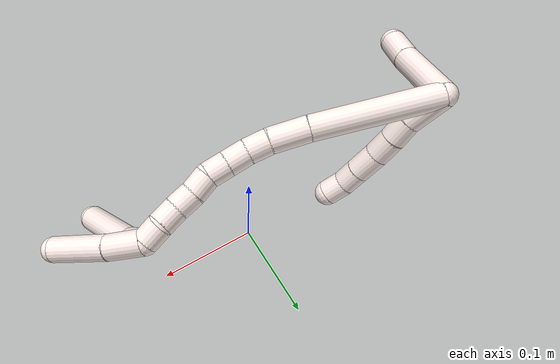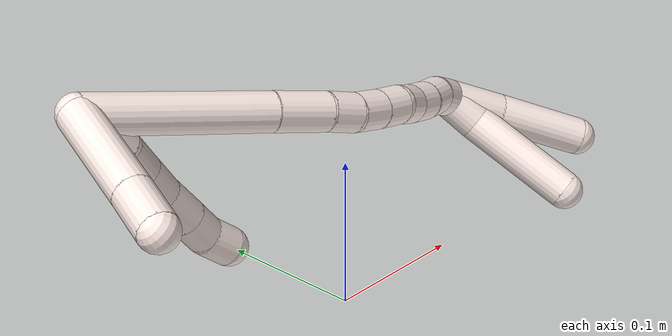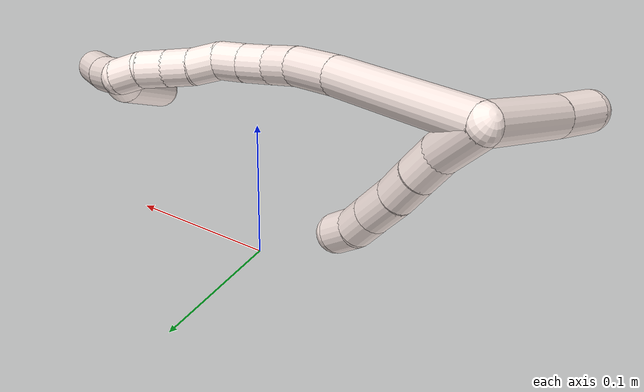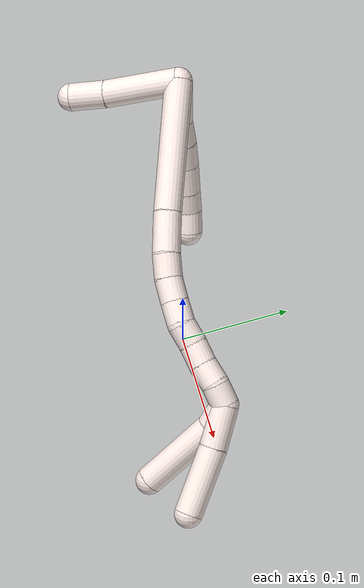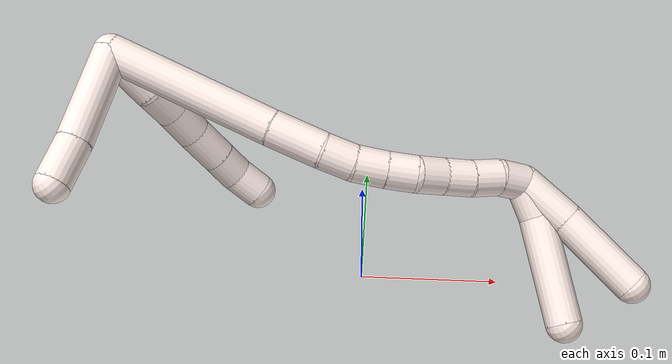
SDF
<sdf version="1.7">
 <world name="default">
  <model name="11">
   <static>0</static>
   <link name="11">
    <collision name="collision-cylinder-e_1_2_8">
     <pose>0.001443 0.000898 -0.019062 -3.09454 0.075461 -2.02675</pose>
     <geometry><cylinder><radius>0.0125</radius><length>0.038275</length></cylinder></geometry>
     <surface>
      <friction><ode><mu>1.16</mu><mu2>1.16</mu2><slip1>0</slip1><slip2>0</slip2></ode></friction>
      <contact><ode><kp>1e+06</kp><kd>1</kd><max_vel>0</max_vel><min_depth>0.001</min_depth></ode></contact>
     </surface>
    </collision>
    <visual name="visual-cylinder-e_1_2_8">
     <pose>0.001443 0.000898 -0.019062 -3.09454 0.075461 -2.02675</pose>
     <geometry><cylinder><radius>0.0125</radius><length>0.038275</length></cylinder></geometry>
     <material><ambient>1 0.933333 0.909804 1</ambient></material>
    </visual>
    <collision name="collision-cylinder-e_2_8_9">
     <pose>0.003289 0.00455 -0.048986 -2.89323 0.035988 -0.286368</pose>
     <geometry><cylinder><radius>0.0125</radius><length>0.022426</length></cylinder></geometry>
     <surface>
      <friction><ode><mu>1.16</mu><mu2>1.16</mu2><slip1>0</slip1><slip2>0</slip2></ode></friction>
      <contact><ode><kp>1e+06</kp><kd>1</kd><max_vel>0</max_vel><min_depth>0.001</min_depth></ode></contact>
     </surface>
    </collision>
    <visual name="visual-cylinder-e_2_8_9">
     <pose>0.003289 0.00455 -0.048986 -2.89323 0.035988 -0.286368</pose>
     <geometry><cylinder><radius>0.0125</radius><length>0.022426</length></cylinder></geometry>
     <material><ambient>1 0.933333 0.909804 1</ambient></material>
    </visual>
    <collision name="collision-cylinder-e_3_9_10">
     <pose>0.00371 0.009492 -0.071096 -2.94953 0.001546 -0.016053</pose>
     <geometry><cylinder><radius>0.0125</radius><length>0.022917</length></cylinder></geometry>
     <surface>
      <friction><ode><mu>1.16</mu><mu2>1.16</mu2><slip1>0</slip1><slip2>0</slip2></ode></friction>
      <contact><ode><kp>1e+06</kp><kd>1</kd><max_vel>0</max_vel><min_depth>0.001</min_depth></ode></contact>
     </surface>
    </collision>
    <visual name="visual-cylinder-e_3_9_10">
     <pose>0.00371 0.009492 -0.071096 -2.94953 0.001546 -0.016053</pose>
     <geometry><cylinder><radius>0.0125</radius><length>0.022917</length></cylinder></geometry>
     <material><ambient>1 0.933333 0.909804 1</ambient></material>
    </visual>
    <collision name="collision-cylinder-e_4_10_11">
     <pose>0.004496 0.013335 -0.095236 -3.01384 0.059026 -0.864835</pose>
     <geometry><cylinder><radius>0.0125</radius><length>0.026042</length></cylinder></geometry>
     <surface>
      <friction><ode><mu>1.16</mu><mu2>1.16</mu2><slip1>0</slip1><slip2>0</slip2></ode></friction>
      <contact><ode><kp>1e+06</kp><kd>1</kd><max_vel>0</max_vel><min_depth>0.001</min_depth></ode></contact>
     </surface>
    </collision>
    <visual name="visual-cylinder-e_4_10_11">
     <pose>0.004496 0.013335 -0.095236 -3.01384 0.059026 -0.864835</pose>
     <geometry><cylinder><radius>0.0125</radius><length>0.026042</length></cylinder></geometry>
     <material><ambient>1 0.933333 0.909804 1</ambient></material>
    </visual>
    <collision name="collision-cylinder-e_5_11_12">
     <pose>0.005745 0.016351 -0.118027 -3.005 0.048068 -0.675872</pose>
     <geometry><cylinder><radius>0.0125</radius><length>0.020006</length></cylinder></geometry>
     <surface>
      <friction><ode><mu>1.16</mu><mu2>1.16</mu2><slip1>0</slip1><slip2>0</slip2></ode></friction>
      <contact><ode><kp>1e+06</kp><kd>1</kd><max_vel>0</max_vel><min_depth>0.001</min_depth></ode></contact>
     </surface>
    </collision>
    <visual name="visual-cylinder-e_5_11_12">
     <pose>0.005745 0.016351 -0.118027 -3.005 0.048068 -0.675872</pose>
     <geometry><cylinder><radius>0.0125</radius><length>0.020006</length></cylinder></geometry>
     <material><ambient>1 0.933333 0.909804 1</ambient></material>
    </visual>
    <collision name="collision-cylinder-e_6_12_6">
     <pose>0.008526 0.017368 -0.137822 3.10681 0.228311 2.84047</pose>
     <geometry><cylinder><radius>0.0125</radius><length>0.020333</length></cylinder></geometry>
     <surface>
      <friction><ode><mu>1.16</mu><mu2>1.16</mu2><slip1>0</slip1><slip2>0</slip2></ode></friction>
      <contact><ode><kp>1e+06</kp><kd>1</kd><max_vel>0</max_vel><min_depth>0.001</min_depth></ode></contact>
     </surface>
    </collision>
    <visual name="visual-cylinder-e_6_12_6">
     <pose>0.008526 0.017368 -0.137822 3.10681 0.228311 2.84047</pose>
     <geometry><cylinder><radius>0.0125</radius><length>0.020333</length></cylinder></geometry>
     <material><ambient>1 0.933333 0.909804 1</ambient></material>
    </visual>
    <collision name="collision-cylinder-e_1_2_13">
     <pose>-0.021996 -0.023369 -0.011186 2.01722 -0.70391 -1.05555</pose>
     <geometry><cylinder><radius>0.0125</radius><length>0.067973</length></cylinder></geometry>
     <surface>
      <friction><ode><mu>1.16</mu><mu2>1.16</mu2><slip1>0</slip1><slip2>0</slip2></ode></friction>
      <contact><ode><kp>1e+06</kp><kd>1</kd><max_vel>0</max_vel><min_depth>0.001</min_depth></ode></contact>
     </surface>
    </collision>
    <visual name="visual-cylinder-e_1_2_13">
     <pose>-0.021996 -0.023369 -0.011186 2.01722 -0.70391 -1.05555</pose>
     <geometry><cylinder><radius>0.0125</radius><length>0.067973</length></cylinder></geometry>
     <material><ambient>1 0.933333 0.909804 1</ambient></material>
    </visual>
    <collision name="collision-cylinder-e_2_13_5">
     <pose>-0.054571 -0.058094 -0.026318 1.90524 -0.721645 -0.975658</pose>
     <geometry><cylinder><radius>0.0125</radius><length>0.032027</length></cylinder></geometry>
     <surface>
      <friction><ode><mu>1.16</mu><mu2>1.16</mu2><slip1>0</slip1><slip2>0</slip2></ode></friction>
      <contact><ode><kp>1e+06</kp><kd>1</kd><max_vel>0</max_vel><min_depth>0.001</min_depth></ode></contact>
     </surface>
    </collision>
    <visual name="visual-cylinder-e_2_13_5">
     <pose>-0.054571 -0.058094 -0.026318 1.90524 -0.721645 -0.975658</pose>
     <geometry><cylinder><radius>0.0125</radius><length>0.032027</length></cylinder></geometry>
     <material><ambient>1 0.933333 0.909804 1</ambient></material>
    </visual>
    <collision name="collision-cylinder-e_1_2_14">
     <pose>0.031222 -0.021561 -0.046147 2.7045 0.549897 1.8077</pose>
     <geometry><cylinder><radius>0.0125</radius><length>0.119486</length></cylinder></geometry>
     <surface>
      <friction><ode><mu>1.16</mu><mu2>1.16</mu2><slip1>0</slip1><slip2>0</slip2></ode></friction>
      <contact><ode><kp>1e+06</kp><kd>1</kd><max_vel>0</max_vel><min_depth>0.001</min_depth></ode></contact>
     </surface>
    </collision>
    <visual name="visual-cylinder-e_1_2_14">
     <pose>0.031222 -0.021561 -0.046147 2.7045 0.549897 1.8077</pose>
     <geometry><cylinder><radius>0.0125</radius><length>0.119486</length></cylinder></geometry>
     <material><ambient>1 0.933333 0.909804 1</ambient></material>
    </visual>
    <collision name="collision-cylinder-e_2_14_15">
     <pose>0.072294 -0.048716 -0.1068 2.77359 0.564766 2.00092</pose>
     <geometry><cylinder><radius>0.0125</radius><length>0.036809</length></cylinder></geometry>
     <surface>
      <friction><ode><mu>1.16</mu><mu2>1.16</mu2><slip1>0</slip1><slip2>0</slip2></ode></friction>
      <contact><ode><kp>1e+06</kp><kd>1</kd><max_vel>0</max_vel><min_depth>0.001</min_depth></ode></contact>
     </surface>
    </collision>
    <visual name="visual-cylinder-e_2_14_15">
     <pose>0.072294 -0.048716 -0.1068 2.77359 0.564766 2.00092</pose>
     <geometry><cylinder><radius>0.0125</radius><length>0.036809</length></cylinder></geometry>
     <material><ambient>1 0.933333 0.909804 1</ambient></material>
    </visual>
    <collision name="collision-cylinder-e_3_15_16">
     <pose>0.088054 -0.05614 -0.130358 2.94194 0.569231 2.48188</pose>
     <geometry><cylinder><radius>0.0125</radius><length>0.02193</length></cylinder></geometry>
     <surface>
      <friction><ode><mu>1.16</mu><mu2>1.16</mu2><slip1>0</slip1><slip2>0</slip2></ode></friction>
      <contact><ode><kp>1e+06</kp><kd>1</kd><max_vel>0</max_vel><min_depth>0.001</min_depth></ode></contact>
     </surface>
    </collision>
    <visual name="visual-cylinder-e_3_15_16">
     <pose>0.088054 -0.05614 -0.130358 2.94194 0.569231 2.48188</pose>
     <geometry><cylinder><radius>0.0125</radius><length>0.02193</length></cylinder></geometry>
     <material><ambient>1 0.933333 0.909804 1</ambient></material>
    </visual>
    <collision name="collision-cylinder-e_4_16_17">
     <pose>0.101105 -0.058572 -0.147468 3.06732 0.723794 2.94594</pose>
     <geometry><cylinder><radius>0.0125</radius><length>0.021566</length></cylinder></geometry>
     <surface>
      <friction><ode><mu>1.16</mu><mu2>1.16</mu2><slip1>0</slip1><slip2>0</slip2></ode></friction>
      <contact><ode><kp>1e+06</kp><kd>1</kd><max_vel>0</max_vel><min_depth>0.001</min_depth></ode></contact>
     </surface>
    </collision>
    <visual name="visual-cylinder-e_4_16_17">
     <pose>0.101105 -0.058572 -0.147468 3.06732 0.723794 2.94594</pose>
     <geometry><cylinder><radius>0.0125</radius><length>0.021566</length></cylinder></geometry>
     <material><ambient>1 0.933333 0.909804 1</ambient></material>
    </visual>
    <collision name="collision-cylinder-e_5_17_18">
     <pose>0.115328 -0.05967 -0.162686 3.072 0.778675 2.9723</pose>
     <geometry><cylinder><radius>0.0125</radius><length>0.020166</length></cylinder></geometry>
     <surface>
      <friction><ode><mu>1.16</mu><mu2>1.16</mu2><slip1>0</slip1><slip2>0</slip2></ode></friction>
      <contact><ode><kp>1e+06</kp><kd>1</kd><max_vel>0</max_vel><min_depth>0.001</min_depth></ode></contact>
     </surface>
    </collision>
    <visual name="visual-cylinder-e_5_17_18">
     <pose>0.115328 -0.05967 -0.162686 3.072 0.778675 2.9723</pose>
     <geometry><cylinder><radius>0.0125</radius><length>0.020166</length></cylinder></geometry>
     <material><ambient>1 0.933333 0.909804 1</ambient></material>
    </visual>
    <collision name="collision-cylinder-e_6_18_19">
     <pose>0.128644 -0.057445 -0.177186 -2.78619 0.672546 -2.19236</pose>
     <geometry><cylinder><radius>0.0125</radius><length>0.020016</length></cylinder></geometry>
     <surface>
      <friction><ode><mu>1.16</mu><mu2>1.16</mu2><slip1>0</slip1><slip2>0</slip2></ode></friction>
      <contact><ode><kp>1e+06</kp><kd>1</kd><max_vel>0</max_vel><min_depth>0.001</min_depth></ode></contact>
     </surface>
    </collision>
    <visual name="visual-cylinder-e_6_18_19">
     <pose>0.128644 -0.057445 -0.177186 -2.78619 0.672546 -2.19236</pose>
     <geometry><cylinder><radius>0.0125</radius><length>0.020016</length></cylinder></geometry>
     <material><ambient>1 0.933333 0.909804 1</ambient></material>
    </visual>
    <collision name="collision-cylinder-e_7_19_20">
     <pose>0.141799 -0.05339 -0.191632 -2.95648 0.763382 -2.68706</pose>
     <geometry><cylinder><radius>0.0125</radius><length>0.020017</length></cylinder></geometry>
     <surface>
      <friction><ode><mu>1.16</mu><mu2>1.16</mu2><slip1>0</slip1><slip2>0</slip2></ode></friction>
      <contact><ode><kp>1e+06</kp><kd>1</kd><max_vel>0</max_vel><min_depth>0.001</min_depth></ode></contact>
     </surface>
    </collision>
    <visual name="visual-cylinder-e_7_19_20">
     <pose>0.141799 -0.05339 -0.191632 -2.95648 0.763382 -2.68706</pose>
     <geometry><cylinder><radius>0.0125</radius><length>0.020017</length></cylinder></geometry>
     <material><ambient>1 0.933333 0.909804 1</ambient></material>
    </visual>
    <collision name="collision-cylinder-e_8_20_21">
     <pose>0.156161 -0.049945 -0.205076 -2.81956 0.839424 -2.44342</pose>
     <geometry><cylinder><radius>0.0125</radius><length>0.02</length></cylinder></geometry>
     <surface>
      <friction><ode><mu>1.16</mu><mu2>1.16</mu2><slip1>0</slip1><slip2>0</slip2></ode></friction>
      <contact><ode><kp>1e+06</kp><kd>1</kd><max_vel>0</max_vel><min_depth>0.001</min_depth></ode></contact>
     </surface>
    </collision>
    <visual name="visual-cylinder-e_8_20_21">
     <pose>0.156161 -0.049945 -0.205076 -2.81956 0.839424 -2.44342</pose>
     <geometry><cylinder><radius>0.0125</radius><length>0.02</length></cylinder></geometry>
     <material><ambient>1 0.933333 0.909804 1</ambient></material>
    </visual>
    <collision name="collision-cylinder-e_9_21_1">
     <pose>0.169029 -0.045566 -0.219506 -2.86872 0.573114 -2.26957</pose>
     <geometry><cylinder><radius>0.0125</radius><length>0.020009</length></cylinder></geometry>
     <surface>
      <friction><ode><mu>1.16</mu><mu2>1.16</mu2><slip1>0</slip1><slip2>0</slip2></ode></friction>
      <contact><ode><kp>1e+06</kp><kd>1</kd><max_vel>0</max_vel><min_depth>0.001</min_depth></ode></contact>
     </surface>
    </collision>
    <visual name="visual-cylinder-e_9_21_1">
     <pose>0.169029 -0.045566 -0.219506 -2.86872 0.573114 -2.26957</pose>
     <geometry><cylinder><radius>0.0125</radius><length>0.020009</length></cylinder></geometry>
     <material><ambient>1 0.933333 0.909804 1</ambient></material>
    </visual>
    <collision name="collision-cylinder-e_1_1_22">
     <pose>0.171928 -0.048025 -0.238943 2.74691 -0.202733 -0.94119</pose>
     <geometry><cylinder><radius>0.0125</radius><length>0.025085</length></cylinder></geometry>
     <surface>
      <friction><ode><mu>1.16</mu><mu2>1.16</mu2><slip1>0</slip1><slip2>0</slip2></ode></friction>
      <contact><ode><kp>1e+06</kp><kd>1</kd><max_vel>0</max_vel><min_depth>0.001</min_depth></ode></contact>
     </surface>
    </collision>
    <visual name="visual-cylinder-e_1_1_22">
     <pose>0.171928 -0.048025 -0.238943 2.74691 -0.202733 -0.94119</pose>
     <geometry><cylinder><radius>0.0125</radius><length>0.025085</length></cylinder></geometry>
     <material><ambient>1 0.933333 0.909804 1</ambient></material>
    </visual>
    <collision name="collision-cylinder-e_2_22_4">
     <pose>0.157644 -0.074399 -0.278499 2.4871 -0.319307 -0.885861</pose>
     <geometry><cylinder><radius>0.0125</radius><length>0.074915</length></cylinder></geometry>
     <surface>
      <friction><ode><mu>1.16</mu><mu2>1.16</mu2><slip1>0</slip1><slip2>0</slip2></ode></friction>
      <contact><ode><kp>1e+06</kp><kd>1</kd><max_vel>0</max_vel><min_depth>0.001</min_depth></ode></contact>
     </surface>
    </collision>
    <visual name="visual-cylinder-e_2_22_4">
     <pose>0.157644 -0.074399 -0.278499 2.4871 -0.319307 -0.885861</pose>
     <geometry><cylinder><radius>0.0125</radius><length>0.074915</length></cylinder></geometry>
     <material><ambient>1 0.933333 0.909804 1</ambient></material>
    </visual>
    <collision name="collision-cylinder-e_1_1_23">
     <pose>0.179574 -0.051022 -0.244494 2.71286 0.268996 1.1122</pose>
     <geometry><cylinder><radius>0.0125</radius><length>0.038534</length></cylinder></geometry>
     <surface>
      <friction><ode><mu>1.16</mu><mu2>1.16</mu2><slip1>0</slip1><slip2>0</slip2></ode></friction>
      <contact><ode><kp>1e+06</kp><kd>1</kd><max_vel>0</max_vel><min_depth>0.001</min_depth></ode></contact>
     </surface>
    </collision>
    <visual name="visual-cylinder-e_1_1_23">
     <pose>0.179574 -0.051022 -0.244494 2.71286 0.268996 1.1122</pose>
     <geometry><cylinder><radius>0.0125</radius><length>0.038534</length></cylinder></geometry>
     <material><ambient>1 0.933333 0.909804 1</ambient></material>
    </visual>
    <collision name="collision-cylinder-e_2_23_3">
     <pose>0.191078 -0.073368 -0.287653 2.63358 0.209242 0.768699</pose>
     <geometry><cylinder><radius>0.0125</radius><length>0.061466</length></cylinder></geometry>
     <surface>
      <friction><ode><mu>1.16</mu><mu2>1.16</mu2><slip1>0</slip1><slip2>0</slip2></ode></friction>
      <contact><ode><kp>1e+06</kp><kd>1</kd><max_vel>0</max_vel><min_depth>0.001</min_depth></ode></contact>
     </surface>
    </collision>
    <visual name="visual-cylinder-e_2_23_3">
     <pose>0.191078 -0.073368 -0.287653 2.63358 0.209242 0.768699</pose>
     <geometry><cylinder><radius>0.0125</radius><length>0.061466</length></cylinder></geometry>
     <material><ambient>1 0.933333 0.909804 1</ambient></material>
    </visual>
    <collision name="collision-sphere-3">
     <pose>0.197462 -0.087991 -0.31392 0 -0 0</pose>
     <geometry><sphere><radius>0.0125</radius></sphere></geometry>
     <surface>
      <friction><ode><mu>1.16</mu><mu2>1.16</mu2><slip1>0</slip1><slip2>0</slip2></ode></friction>
      <contact><ode><kp>1e+06</kp><kd>1</kd><max_vel>0</max_vel><min_depth>0.001</min_depth></ode></contact>
     </surface>
    </collision>
    <visual name="visual-sphere-3">
     <pose>0.197462 -0.087991 -0.31392 0 -0 0</pose>
     <geometry><sphere><radius>0.0125</radius></sphere></geometry>
     <material><ambient>1 0.933333 0.909804 1</ambient></material>
    </visual>
    <collision name="collision-sphere-23">
     <pose>0.184694 -0.058744 -0.261387 0 -0 0</pose>
     <geometry><sphere><radius>0.0125</radius></sphere></geometry>
     <surface>
      <friction><ode><mu>1.16</mu><mu2>1.16</mu2><slip1>0</slip1><slip2>0</slip2></ode></friction>
      <contact><ode><kp>1e+06</kp><kd>1</kd><max_vel>0</max_vel><min_depth>0.001</min_depth></ode></contact>
     </surface>
    </collision>
    <visual name="visual-sphere-23">
     <pose>0.184694 -0.058744 -0.261387 0 -0 0</pose>
     <geometry><sphere><radius>0.0125</radius></sphere></geometry>
     <material><ambient>1 0.933333 0.909804 1</ambient></material>
    </visual>
    <collision name="collision-sphere-4">
     <pose>0.145886 -0.096049 -0.306714 0 -0 0</pose>
     <geometry><sphere><radius>0.0125</radius></sphere></geometry>
     <surface>
      <friction><ode><mu>1.16</mu><mu2>1.16</mu2><slip1>0</slip1><slip2>0</slip2></ode></friction>
      <contact><ode><kp>1e+06</kp><kd>1</kd><max_vel>0</max_vel><min_depth>0.001</min_depth></ode></contact>
     </surface>
    </collision>
    <visual name="visual-sphere-4">
     <pose>0.145886 -0.096049 -0.306714 0 -0 0</pose>
     <geometry><sphere><radius>0.0125</radius></sphere></geometry>
     <material><ambient>1 0.933333 0.909804 1</ambient></material>
    </visual>
    <collision name="collision-sphere-22">
     <pose>0.169403 -0.052749 -0.250284 0 -0 0</pose>
     <geometry><sphere><radius>0.0125</radius></sphere></geometry>
     <surface>
      <friction><ode><mu>1.16</mu><mu2>1.16</mu2><slip1>0</slip1><slip2>0</slip2></ode></friction>
      <contact><ode><kp>1e+06</kp><kd>1</kd><max_vel>0</max_vel><min_depth>0.001</min_depth></ode></contact>
     </surface>
    </collision>
    <visual name="visual-sphere-22">
     <pose>0.169403 -0.052749 -0.250284 0 -0 0</pose>
     <geometry><sphere><radius>0.0125</radius></sphere></geometry>
     <material><ambient>1 0.933333 0.909804 1</ambient></material>
    </visual>
    <collision name="collision-sphere-1">
     <pose>0.174454 -0.043301 -0.227601 0 -0 0</pose>
     <geometry><sphere><radius>0.0125</radius></sphere></geometry>
     <surface>
      <friction><ode><mu>1.16</mu><mu2>1.16</mu2><slip1>0</slip1><slip2>0</slip2></ode></friction>
      <contact><ode><kp>1e+06</kp><kd>1</kd><max_vel>0</max_vel><min_depth>0.001</min_depth></ode></contact>
     </surface>
    </collision>
    <visual name="visual-sphere-1">
     <pose>0.174454 -0.043301 -0.227601 0 -0 0</pose>
     <geometry><sphere><radius>0.0125</radius></sphere></geometry>
     <material><ambient>1 0.933333 0.909804 1</ambient></material>
    </visual>
    <collision name="collision-sphere-21">
     <pose>0.163604 -0.047832 -0.211411 0 -0 0</pose>
     <geometry><sphere><radius>0.0125</radius></sphere></geometry>
     <surface>
      <friction><ode><mu>1.16</mu><mu2>1.16</mu2><slip1>0</slip1><slip2>0</slip2></ode></friction>
      <contact><ode><kp>1e+06</kp><kd>1</kd><max_vel>0</max_vel><min_depth>0.001</min_depth></ode></contact>
     </surface>
    </collision>
    <visual name="visual-sphere-21">
     <pose>0.163604 -0.047832 -0.211411 0 -0 0</pose>
     <geometry><sphere><radius>0.0125</radius></sphere></geometry>
     <material><ambient>1 0.933333 0.909804 1</ambient></material>
    </visual>
    <collision name="collision-sphere-12">
     <pose>0.006225 0.017712 -0.127925 0 -0 0</pose>
     <geometry><sphere><radius>0.0125</radius></sphere></geometry>
     <surface>
      <friction><ode><mu>1.16</mu><mu2>1.16</mu2><slip1>0</slip1><slip2>0</slip2></ode></friction>
      <contact><ode><kp>1e+06</kp><kd>1</kd><max_vel>0</max_vel><min_depth>0.001</min_depth></ode></contact>
     </surface>
    </collision>
    <visual name="visual-sphere-12">
     <pose>0.006225 0.017712 -0.127925 0 -0 0</pose>
     <geometry><sphere><radius>0.0125</radius></sphere></geometry>
     <material><ambient>1 0.933333 0.909804 1</ambient></material>
    </visual>
    <collision name="collision-sphere-11">
     <pose>0.005264 0.014991 -0.108128 0 -0 0</pose>
     <geometry><sphere><radius>0.0125</radius></sphere></geometry>
     <surface>
      <friction><ode><mu>1.16</mu><mu2>1.16</mu2><slip1>0</slip1><slip2>0</slip2></ode></friction>
      <contact><ode><kp>1e+06</kp><kd>1</kd><max_vel>0</max_vel><min_depth>0.001</min_depth></ode></contact>
     </surface>
    </collision>
    <visual name="visual-sphere-11">
     <pose>0.005264 0.014991 -0.108128 0 -0 0</pose>
     <geometry><sphere><radius>0.0125</radius></sphere></geometry>
     <material><ambient>1 0.933333 0.909804 1</ambient></material>
    </visual>
    <collision name="collision-sphere-10">
     <pose>0.003728 0.011679 -0.082344 0 -0 0</pose>
     <geometry><sphere><radius>0.0125</radius></sphere></geometry>
     <surface>
      <friction><ode><mu>1.16</mu><mu2>1.16</mu2><slip1>0</slip1><slip2>0</slip2></ode></friction>
      <contact><ode><kp>1e+06</kp><kd>1</kd><max_vel>0</max_vel><min_depth>0.001</min_depth></ode></contact>
     </surface>
    </collision>
    <visual name="visual-sphere-10">
     <pose>0.003728 0.011679 -0.082344 0 -0 0</pose>
     <geometry><sphere><radius>0.0125</radius></sphere></geometry>
     <material><ambient>1 0.933333 0.909804 1</ambient></material>
    </visual>
    <collision name="collision-sphere-9">
     <pose>0.003692 0.007304 -0.059848 0 -0 0</pose>
     <geometry><sphere><radius>0.0125</radius></sphere></geometry>
     <surface>
      <friction><ode><mu>1.16</mu><mu2>1.16</mu2><slip1>0</slip1><slip2>0</slip2></ode></friction>
      <contact><ode><kp>1e+06</kp><kd>1</kd><max_vel>0</max_vel><min_depth>0.001</min_depth></ode></contact>
     </surface>
    </collision>
    <visual name="visual-sphere-9">
     <pose>0.003692 0.007304 -0.059848 0 -0 0</pose>
     <geometry><sphere><radius>0.0125</radius></sphere></geometry>
     <material><ambient>1 0.933333 0.909804 1</ambient></material>
    </visual>
    <collision name="collision-sphere-2">
     <geometry><sphere><radius>0.0125</radius></sphere></geometry>
     <surface>
      <friction><ode><mu>1.16</mu><mu2>1.16</mu2><slip1>0</slip1><slip2>0</slip2></ode></friction>
      <contact><ode><kp>1e+06</kp><kd>1</kd><max_vel>0</max_vel><min_depth>0.001</min_depth></ode></contact>
     </surface>
    </collision>
    <visual name="visual-sphere-2">
     <geometry><sphere><radius>0.0125</radius></sphere></geometry>
     <material><ambient>1 0.933333 0.909804 1</ambient></material>
    </visual>
    <collision name="collision-sphere-19">
     <pose>0.134879 -0.054721 -0.184525 0 -0 0</pose>
     <geometry><sphere><radius>0.0125</radius></sphere></geometry>
     <surface>
      <friction><ode><mu>1.16</mu><mu2>1.16</mu2><slip1>0</slip1><slip2>0</slip2></ode></friction>
      <contact><ode><kp>1e+06</kp><kd>1</kd><max_vel>0</max_vel><min_depth>0.001</min_depth></ode></contact>
     </surface>
    </collision>
    <visual name="visual-sphere-19">
     <pose>0.134879 -0.054721 -0.184525 0 -0 0</pose>
     <geometry><sphere><radius>0.0125</radius></sphere></geometry>
     <material><ambient>1 0.933333 0.909804 1</ambient></material>
    </visual>
    <collision name="collision-sphere-8">
     <pose>0.002886 0.001795 -0.038124 0 -0 0</pose>
     <geometry><sphere><radius>0.0125</radius></sphere></geometry>
     <surface>
      <friction><ode><mu>1.16</mu><mu2>1.16</mu2><slip1>0</slip1><slip2>0</slip2></ode></friction>
      <contact><ode><kp>1e+06</kp><kd>1</kd><max_vel>0</max_vel><min_depth>0.001</min_depth></ode></contact>
     </surface>
    </collision>
    <visual name="visual-sphere-8">
     <pose>0.002886 0.001795 -0.038124 0 -0 0</pose>
     <geometry><sphere><radius>0.0125</radius></sphere></geometry>
     <material><ambient>1 0.933333 0.909804 1</ambient></material>
    </visual>
    <collision name="collision-sphere-6">
     <pose>0.010828 0.017023 -0.147719 0 -0 0</pose>
     <geometry><sphere><radius>0.0125</radius></sphere></geometry>
     <surface>
      <friction><ode><mu>1.16</mu><mu2>1.16</mu2><slip1>0</slip1><slip2>0</slip2></ode></friction>
      <contact><ode><kp>1e+06</kp><kd>1</kd><max_vel>0</max_vel><min_depth>0.001</min_depth></ode></contact>
     </surface>
    </collision>
    <visual name="visual-sphere-6">
     <pose>0.010828 0.017023 -0.147719 0 -0 0</pose>
     <geometry><sphere><radius>0.0125</radius></sphere></geometry>
     <material><ambient>1 0.933333 0.909804 1</ambient></material>
    </visual>
    <collision name="collision-sphere-13">
     <pose>-0.043992 -0.046739 -0.022372 0 -0 0</pose>
     <geometry><sphere><radius>0.0125</radius></sphere></geometry>
     <surface>
      <friction><ode><mu>1.16</mu><mu2>1.16</mu2><slip1>0</slip1><slip2>0</slip2></ode></friction>
      <contact><ode><kp>1e+06</kp><kd>1</kd><max_vel>0</max_vel><min_depth>0.001</min_depth></ode></contact>
     </surface>
    </collision>
    <visual name="visual-sphere-13">
     <pose>-0.043992 -0.046739 -0.022372 0 -0 0</pose>
     <geometry><sphere><radius>0.0125</radius></sphere></geometry>
     <material><ambient>1 0.933333 0.909804 1</ambient></material>
    </visual>
    <collision name="collision-sphere-5">
     <pose>-0.06515 -0.06945 -0.030264 0 -0 0</pose>
     <geometry><sphere><radius>0.0125</radius></sphere></geometry>
     <surface>
      <friction><ode><mu>1.16</mu><mu2>1.16</mu2><slip1>0</slip1><slip2>0</slip2></ode></friction>
      <contact><ode><kp>1e+06</kp><kd>1</kd><max_vel>0</max_vel><min_depth>0.001</min_depth></ode></contact>
     </surface>
    </collision>
    <visual name="visual-sphere-5">
     <pose>-0.06515 -0.06945 -0.030264 0 -0 0</pose>
     <geometry><sphere><radius>0.0125</radius></sphere></geometry>
     <material><ambient>1 0.933333 0.909804 1</ambient></material>
    </visual>
    <collision name="collision-sphere-14">
     <pose>0.062443 -0.043123 -0.092294 0 -0 0</pose>
     <geometry><sphere><radius>0.0125</radius></sphere></geometry>
     <surface>
      <friction><ode><mu>1.16</mu><mu2>1.16</mu2><slip1>0</slip1><slip2>0</slip2></ode></friction>
      <contact><ode><kp>1e+06</kp><kd>1</kd><max_vel>0</max_vel><min_depth>0.001</min_depth></ode></contact>
     </surface>
    </collision>
    <visual name="visual-sphere-14">
     <pose>0.062443 -0.043123 -0.092294 0 -0 0</pose>
     <geometry><sphere><radius>0.0125</radius></sphere></geometry>
     <material><ambient>1 0.933333 0.909804 1</ambient></material>
    </visual>
    <collision name="collision-sphere-15">
     <pose>0.082145 -0.054309 -0.121306 0 -0 0</pose>
     <geometry><sphere><radius>0.0125</radius></sphere></geometry>
     <surface>
      <friction><ode><mu>1.16</mu><mu2>1.16</mu2><slip1>0</slip1><slip2>0</slip2></ode></friction>
      <contact><ode><kp>1e+06</kp><kd>1</kd><max_vel>0</max_vel><min_depth>0.001</min_depth></ode></contact>
     </surface>
    </collision>
    <visual name="visual-sphere-15">
     <pose>0.082145 -0.054309 -0.121306 0 -0 0</pose>
     <geometry><sphere><radius>0.0125</radius></sphere></geometry>
     <material><ambient>1 0.933333 0.909804 1</ambient></material>
    </visual>
    <collision name="collision-sphere-16">
     <pose>0.093964 -0.057972 -0.139411 0 -0 0</pose>
     <geometry><sphere><radius>0.0125</radius></sphere></geometry>
     <surface>
      <friction><ode><mu>1.16</mu><mu2>1.16</mu2><slip1>0</slip1><slip2>0</slip2></ode></friction>
      <contact><ode><kp>1e+06</kp><kd>1</kd><max_vel>0</max_vel><min_depth>0.001</min_depth></ode></contact>
     </surface>
    </collision>
    <visual name="visual-sphere-16">
     <pose>0.093964 -0.057972 -0.139411 0 -0 0</pose>
     <geometry><sphere><radius>0.0125</radius></sphere></geometry>
     <material><ambient>1 0.933333 0.909804 1</ambient></material>
    </visual>
    <collision name="collision-sphere-17">
     <pose>0.108246 -0.059171 -0.155526 0 -0 0</pose>
     <geometry><sphere><radius>0.0125</radius></sphere></geometry>
     <surface>
      <friction><ode><mu>1.16</mu><mu2>1.16</mu2><slip1>0</slip1><slip2>0</slip2></ode></friction>
      <contact><ode><kp>1e+06</kp><kd>1</kd><max_vel>0</max_vel><min_depth>0.001</min_depth></ode></contact>
     </surface>
    </collision>
    <visual name="visual-sphere-17">
     <pose>0.108246 -0.059171 -0.155526 0 -0 0</pose>
     <geometry><sphere><radius>0.0125</radius></sphere></geometry>
     <material><ambient>1 0.933333 0.909804 1</ambient></material>
    </visual>
    <collision name="collision-sphere-18">
     <pose>0.12241 -0.060169 -0.169846 0 -0 0</pose>
     <geometry><sphere><radius>0.0125</radius></sphere></geometry>
     <surface>
      <friction><ode><mu>1.16</mu><mu2>1.16</mu2><slip1>0</slip1><slip2>0</slip2></ode></friction>
      <contact><ode><kp>1e+06</kp><kd>1</kd><max_vel>0</max_vel><min_depth>0.001</min_depth></ode></contact>
     </surface>
    </collision>
    <visual name="visual-sphere-18">
     <pose>0.12241 -0.060169 -0.169846 0 -0 0</pose>
     <geometry><sphere><radius>0.0125</radius></sphere></geometry>
     <material><ambient>1 0.933333 0.909804 1</ambient></material>
    </visual>
    <collision name="collision-sphere-20">
     <pose>0.148718 -0.052059 -0.19874 0 -0 0</pose>
     <geometry><sphere><radius>0.0125</radius></sphere></geometry>
     <surface>
      <friction><ode><mu>1.16</mu><mu2>1.16</mu2><slip1>0</slip1><slip2>0</slip2></ode></friction>
      <contact><ode><kp>1e+06</kp><kd>1</kd><max_vel>0</max_vel><min_depth>0.001</min_depth></ode></contact>
     </surface>
    </collision>
    <visual name="visual-sphere-20">
     <pose>0.148718 -0.052059 -0.19874 0 -0 0</pose>
     <geometry><sphere><radius>0.0125</radius></sphere></geometry>
     <material><ambient>1 0.933333 0.909804 1</ambient></material>
    </visual>
    <inertial>
     <pose>0.075882 -0.036691 -0.135074 0 -0 0</pose>
     <mass>0.75</mass>
     <inertia><ixx>0.000113</ixx><ixy>0</ixy><ixz>0</ixz><iyy>0.000124</iyy><iyz>0</iyz><izz>6e-06</izz></inertia>
    </inertial>
   </link>
   <pose>-0.169597 0.045272 0.177477 -0.471723 -0.526389 0.389745</pose>
  </model>
 </world>
</sdf>
